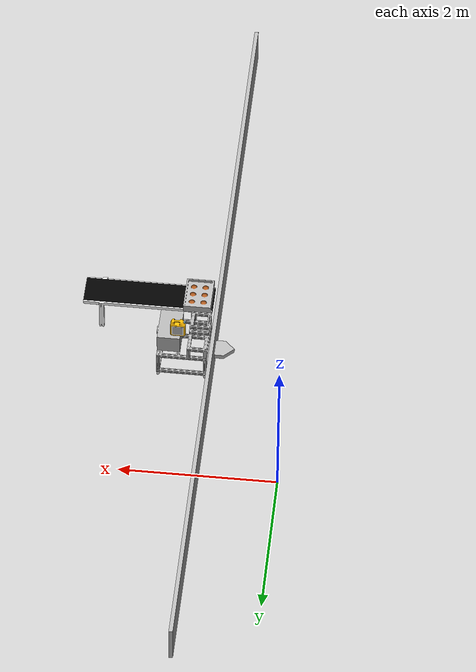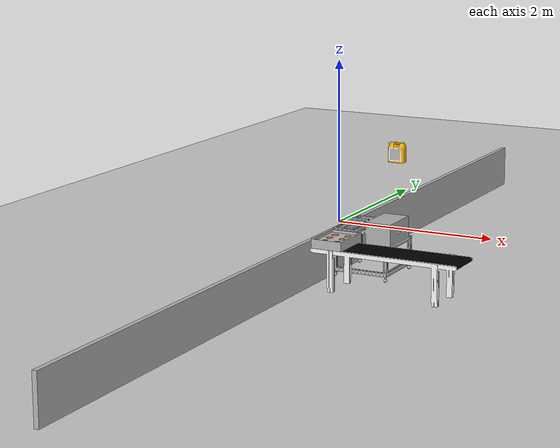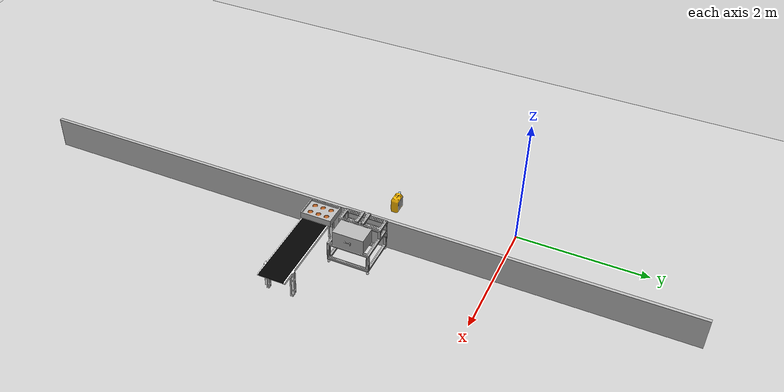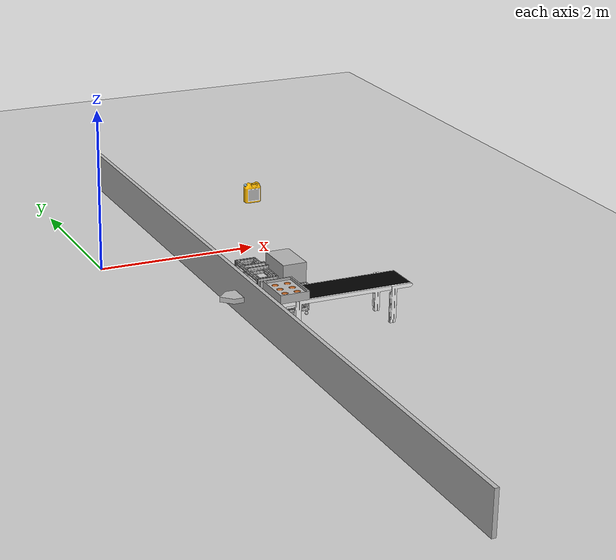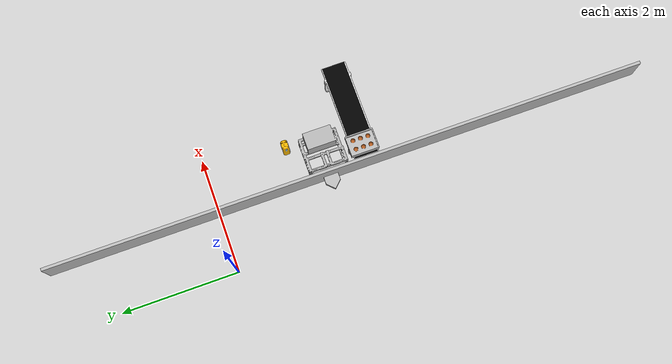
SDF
<sdf version="1.6">
 <world name="eyantra_world">
  <light name="light0" type="directional">
   <pose>0 -18.818 8 0.75 -0 0</pose>
   <diffuse>0.5 0.5 0.5 1</diffuse>
   <specular>0.1 0.1 0.1 1</specular>
   <direction>0.1 0.1 -0.9</direction>
   <attenuation>
    <range>20</range>
    <constant>0.5</constant>
    <linear>0.01</linear>
    <quadratic>0.001</quadratic>
   </attenuation>
   <cast_shadows>0</cast_shadows>
  </light>
  <light name="light3" type="directional">
   <pose>3.9239 1.64974 4 0 1.2 0</pose>
   <diffuse>0.5 0.5 0.5 1</diffuse>
   <specular>0.1 0.1 0.1 1</specular>
   <direction>0.1 0.1 -0.9</direction>
   <attenuation>
    <range>20</range>
    <constant>0.5</constant>
    <linear>0.01</linear>
    <quadratic>0.001</quadratic>
   </attenuation>
   <cast_shadows>0</cast_shadows>
  </light>
  <light name="light5" type="directional">
   <pose>0.454419 12.4783 5 -0.8 0 0</pose>
   <diffuse>0.5 0.5 0.5 1</diffuse>
   <specular>0.1 0.1 0.1 1</specular>
   <direction>0.1 0.1 -0.9</direction>
   <attenuation>
    <range>20</range>
    <constant>0.5</constant>
    <linear>0.01</linear>
    <quadratic>0.001</quadratic>
   </attenuation>
   <cast_shadows>0</cast_shadows>
  </light>
  <scene>
   <shadows>false</shadows>
   <ambient>0.5 0.5 0.5 1.0</ambient>
   <grid>false</grid>
   <sky><time>22</time><sunrise>20</sunrise><sunset>21</sunset><clouds><humidity>0</humidity></clouds></sky>
  </scene>
  <gravity>0 0 -9.81</gravity>
  <plugin filename="libignition-gazebo-sensors-system.so" name="ignition::gazebo::systems::Sensors">
   <render_engine>ogre2</render_engine>
  </plugin>
  <physics name="1ms" type="ignored">
   <max_step_size>0.001</max_step_size>
   <real_time_factor>1</real_time_factor>
   <real_time_update_rate>1000</real_time_update_rate>
  </physics>
  <plugin name="ignition::gazebo::systems::Physics" filename="ignition-gazebo-physics-system"/>
  <plugin name="ignition::gazebo::systems::UserCommands" filename="ignition-gazebo-user-commands-system"/>
  <plugin name="ignition::gazebo::systems::SceneBroadcaster" filename="ignition-gazebo-scene-broadcaster-system"/>
  <plugin filename="ignition-gazebo-contact-system" name="ignition::gazebo::systems::Contact"/>
  <plugin filename="libignition_link_attacher.so" name="ignition_link_attacher"/>
  <include>
   <name>ground_plane</name>
   <pose>-1.065 -2.417 0.0 0 0 0</pose>
   <uri>model://ground_plane</uri>
  </include>
  <include>
   <uri>model://fertiliser_can</uri>
   <name>fertiliser_can</name>
   <pose>1.395 -1.36 1.229 0.0 0.0 -1.57</pose>
   <static>false</static>
  </include>
  <include>
   <uri>model://arm_base</uri>
   <name>arm_base</name>
   <pose>1.38496 -1.95421 0.253 0 -0 0</pose>
   <static>true</static>
  </include>
  <include>
   <uri>model://dock_shape</uri>
   <name>dock_shape</name>
   <pose>0.9906 -1.9498 0.2241 1.57 0.0 0.0</pose>
   <static>true</static>
  </include>
  <include>
   <uri>model://longer_conveyor_belt</uri>
   <name>conveyor_belt_2</name>
   <pose>1.9023 -2.6090 -0.3 0.0 0.0 1.57</pose>
   <static>true</static>
  </include>
  <include>
   <uri>model://fruit_tray</uri>
   <name>fruit_tray</name>
   <pose>1.266 -2.5956 0.4451 0.0 0.0 0.0</pose>
  </include>
  <include>
   <uri>model://warehouse_divider</uri>
   <name>warehouse_divider</name>
   <pose>1.0129 -2.2743 0.25 0 -0 0</pose>
   <static>true</static>
  </include>
  <model name="plane">
   <static>true</static>
   <pose>-1.13 -7.455 0.39 1.57 0 0</pose>
   <link name="link">
    <collision name="col"><geometry><box><size>8 8 0.1</size></box></geometry></collision>
    <visual name="vis">
     <geometry><box><size>8 0.8 0.1</size></box></geometry>
     <transparency>1.0</transparency>
    </visual>
   </link>
  </model>
  <model name="plane2">
   <static>true</static>
   <pose>-1.11 3.0285 0.39 1.57 0 0</pose>
   <link name="link">
    <collision name="col"><geometry><box><size>8 0.8 0.1</size></box></geometry></collision>
    <visual name="vis">
     <geometry><box><size>8 0.8 0.1</size></box></geometry>
     <transparency>1.0</transparency>
    </visual>
   </link>
  </model>
 </world>
</sdf>

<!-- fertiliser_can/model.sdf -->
<sdf version="1.6">
  <model name='fertiliser_can'>
    <static>true</static>
    <link name="body">
      <pose>0 0 0 0 0 0</pose>
      <inertial>
        <mass>1.0</mass>
        <inertia> <!-- inertias are tricky to compute -->
          <!-- http://gazebosim.org/tutorials?tut=inertia&cat=build_robot -->
          <ixx>0.083</ixx>       <!-- for a box: ixx = 0.083 * mass * (y*y + z*z) -->
          <ixy>0.0</ixy>         <!-- for a box: ixy = 0 -->
          <ixz>0.0</ixz>         <!-- for a box: ixz = 0 -->
          <iyy>0.083</iyy>       <!-- for a box: iyy = 0.083 * mass * (x*x + z*z) -->
          <iyz>0.0</iyz>         <!-- for a box: iyz = 0 -->
          <izz>0.083</izz>       <!-- for a box: izz = 0.083 * mass * (x*x + y*y) -->
        </inertia>
      </inertial>
      <visual name="visual">
        <geometry>
          <mesh>
            <uri>model://fertiliser_can/meshes/Fertiliser.dae</uri>
          </mesh>
        </geometry>
      </visual>

      <collision name="collision">
        <geometry>
          <box>
            <size>0.105 0.198 0.226</size>
          </box>
        </geometry>
        <pose>0 0 0.0 0 0 0</pose>
      </collision>

    </link>
  </model>
</sdf>

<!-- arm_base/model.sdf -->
<sdf version='1.7'>
  <model name='arm_base'>
    <link name='link'>
      <inertial>
        <mass>1</mass>
        <inertia>
          <ixx>0.166667</ixx>
          <ixy>0</ixy>
          <ixz>0</ixz>
          <iyy>0.166667</iyy>
          <iyz>0</iyz>
          <izz>0.166667</izz>
        </inertia>
        <pose>0 0 0 0 -0 0</pose>
      </inertial>
      <self_collide>0</self_collide>
      <enable_wind>0</enable_wind>
      <kinematic>0</kinematic>
      <pose>0 0 0 0 -0 0</pose>
      <gravity>1</gravity>
      <visual name='visual1'>
        <cast_shadows>0</cast_shadows>
        <geometry>
          <mesh>
            <uri>model://arm_base/meshes/arm_base_default.dae</uri>
          </mesh>
        </geometry>
        <material>
          <emissive>0 0 0 1</emissive>
          <ambient>0.3 0.3 0.3 1</ambient>
          <diffuse>0.7 0.7 0.7 1</diffuse>
          <shader type='pixel'>
            <normal_map>__default__</normal_map>
          </shader>
        </material>
        <pose>0 0 -0.25 0 -0 0</pose>
        <transparency>0</transparency>
      </visual>
      <collision name='collision'>
        <laser_retro>0</laser_retro>
        <max_contacts>10</max_contacts>
        <pose>0 0 0 0 -0 0</pose>
        <geometry>
          <box>
            <size>0.7 0.7 0.52</size>
          </box>
        </geometry>
        <surface>
          <friction>
            <ode>
              <mu>1</mu>
              <mu2>1</mu2>
              <fdir1>0 0 0</fdir1>
              <slip1>0</slip1>
              <slip2>0</slip2>
            </ode>
            <torsional>
              <coefficient>1</coefficient>
              <patch_radius>0</patch_radius>
              <surface_radius>0</surface_radius>
              <use_patch_radius>1</use_patch_radius>
              <ode>
                <slip>0</slip>
              </ode>
            </torsional>
          </friction>
          <bounce>
            <restitution_coefficient>0</restitution_coefficient>
            <threshold>1e+06</threshold>
          </bounce>
          <contact>
            <collide_without_contact>0</collide_without_contact>
            <collide_without_contact_bitmask>1</collide_without_contact_bitmask>
            <collide_bitmask>1</collide_bitmask>
            <ode>
              <soft_cfm>0</soft_cfm>
              <soft_erp>0.2</soft_erp>
              <kp>1e+13</kp>
              <kd>1</kd>
              <max_vel>0.01</max_vel>
              <min_depth>0</min_depth>
            </ode>
            <bullet>
              <split_impulse>1</split_impulse>
              <split_impulse_penetration_threshold>-0.01</split_impulse_penetration_threshold>
              <soft_cfm>0</soft_cfm>
              <soft_erp>0.2</soft_erp>
              <kp>1e+13</kp>
              <kd>1</kd>
            </bullet>
          </contact>
        </surface>
      </collision>
    </link>
    <static>1</static>
    <allow_auto_disable>1</allow_auto_disable>
  </model>
</sdf>

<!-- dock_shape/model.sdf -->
<sdf version="1.6">
  <model name='dock_shape'>
    <static>true</static>
    <link name="body">
      <pose>0 0 0 0 0 0</pose>

        <visual name="visual">
          <geometry>
            <mesh><uri>model://dock_shape/meshes/dock_shape.obj</uri></mesh>
          </geometry>
        </visual>

        <collision name="collision">
          <geometry>
            <mesh><uri>model://dock_shape/meshes/dock_shape.obj</uri></mesh>
          </geometry>
        </collision>

        <sensor name='sensor_contact' type='contact'>
          <contact>
            <collision>collision</collision>
            <topic>/world/eyantra_world/time</topic>
          </contact>
          <always_on>1</always_on>
          <update_rate>5</update_rate>
        </sensor>

    </link>
  </model>
</sdf>

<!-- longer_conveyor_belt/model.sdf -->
<sdf version="1.8">

  <model name="longer_conveyor_belt">
    <!-- Make the fixed part static -->
    <static>true</static>

    <!-- ==== Link 1: visual & collision of the belt body ==== -->
    <link name="belt_fixed">
      <pose>0 0 0 0 0 0</pose>

      <visual name="belt_visual">
        <pose>0 0 0 0 0 0</pose>
        <cast_shadows>false</cast_shadows>
        <geometry>
          <mesh>
            <uri>model://longer_conveyor_belt/meshes/longer_conveyor_belt.dae</uri>
            <scale>1 1 1</scale>
          </mesh>
        </geometry>
      </visual>

      <collision name="belt_collision">
        <geometry>
          <box>
            <size>0.463 1.66 0.743</size>
          </box>
        </geometry>
        <pose>0 0 0.3715 0 0 0</pose>
      </collision>
    </link>

    <!-- ==== Link 2: Moving belt surface ==== -->

    <!-- ==== Joint ==== -->

  </model>
</sdf>

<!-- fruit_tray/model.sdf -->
<sdf version="1.6">
  <model name='fruit_tray'>
    <static>true</static>
    <link name="body">
      <pose>0 0 0 0 0 0</pose>

        <visual name="visual">
          <geometry>
            <mesh><uri>model://fruit_tray/meshes/Fruit_Tray.dae</uri></mesh>
          </geometry>
        </visual>

        <collision name="collision">
          <geometry>
            <mesh><uri>model://fruit_tray/meshes/Fruit_Tray_Collision.dae</uri></mesh>
          </geometry>
        </collision>

    </link>
  </model>
</sdf>

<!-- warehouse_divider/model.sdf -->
<sdf version="1.6">
    <model name="warehouse_divider">
	   <static>true</static>
      <link name="warehouse_divider_link">

        <visual name="visual">
          <geometry>
            <mesh><uri>model://warehouse_divider/meshes/warehouse_divider.dae</uri></mesh>
          </geometry>
        </visual>

        <collision name="collision">
          <pose>0 0 0 0 0 0</pose>
          <geometry>
          <box>
            <size>0.05 10.4 0.5</size>
          </box>
           </geometry>
        </collision>

        <sensor name='sensor_contact' type='contact'>
          <contact>
            <collision>collision</collision>
            <topic>/world/eyantra_world/time</topic>
          </contact>
          <always_on>1</always_on>
          <update_rate>5</update_rate>
        </sensor>

      </link>
    </model>
</sdf>
